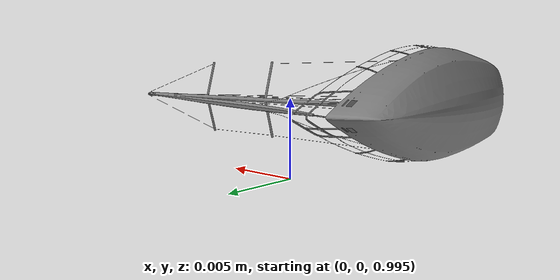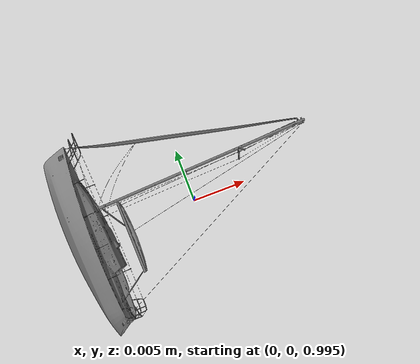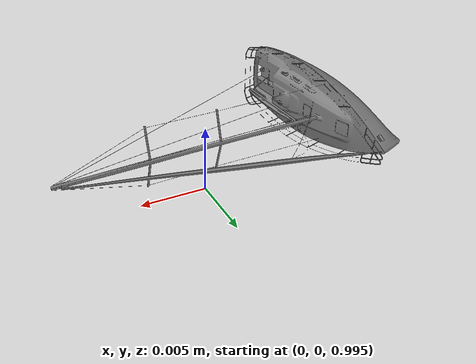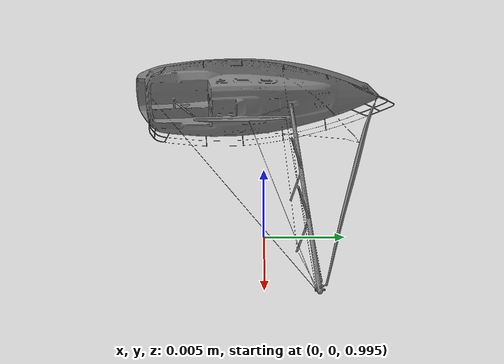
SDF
<?xml version='1.0'?>
<sdf version='1.7'>
  <model name='sailboat_1'>
    <static>true</static>
    <link name='link'>
      <visual name='visual'>
        <pose>0 0 1.0 0 0 -1.507</pose>
        <geometry>
          <mesh>
            <uri>model://sailboat_1/meshes/sailboat.stl</uri>
            <scale>1.8 1.8 1.8</scale>
          </mesh>
        </geometry>
        <material>
          <ambient>0.5 0.5 0.5 1</ambient>
          <diffuse>0.5 0.5 0.5 1</diffuse>
          <specular>0.2 0.2 0.2 1</specular>
        </material>
      </visual>
      <collision name='collision'>
        <pose>0 0 1.0 0 0 -1.507</pose>
        <geometry>
          <mesh>
            <uri>model://sailboat_1/meshes/sailboat.stl</uri>
            <scale>1.8 1.8 1.8</scale>
          </mesh>
        </geometry>
      </collision>
    </link>
  </model>
</sdf>
